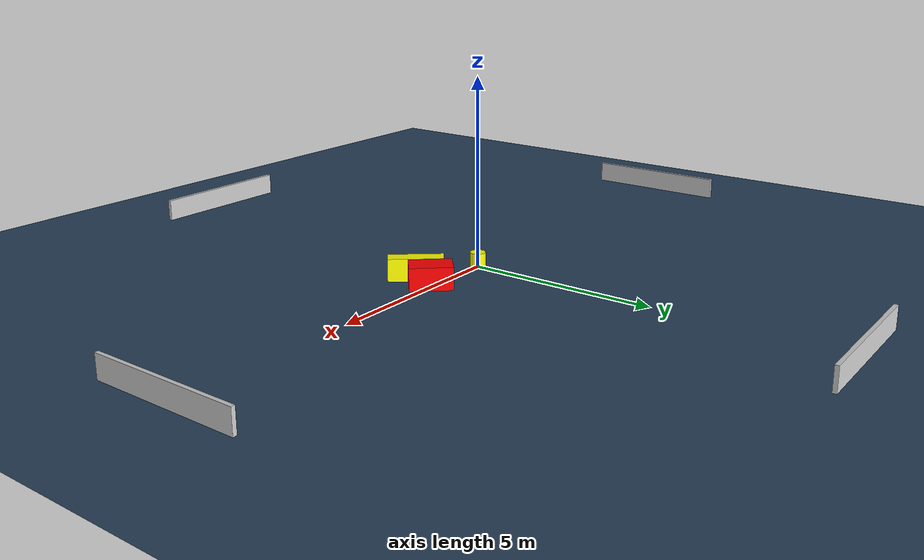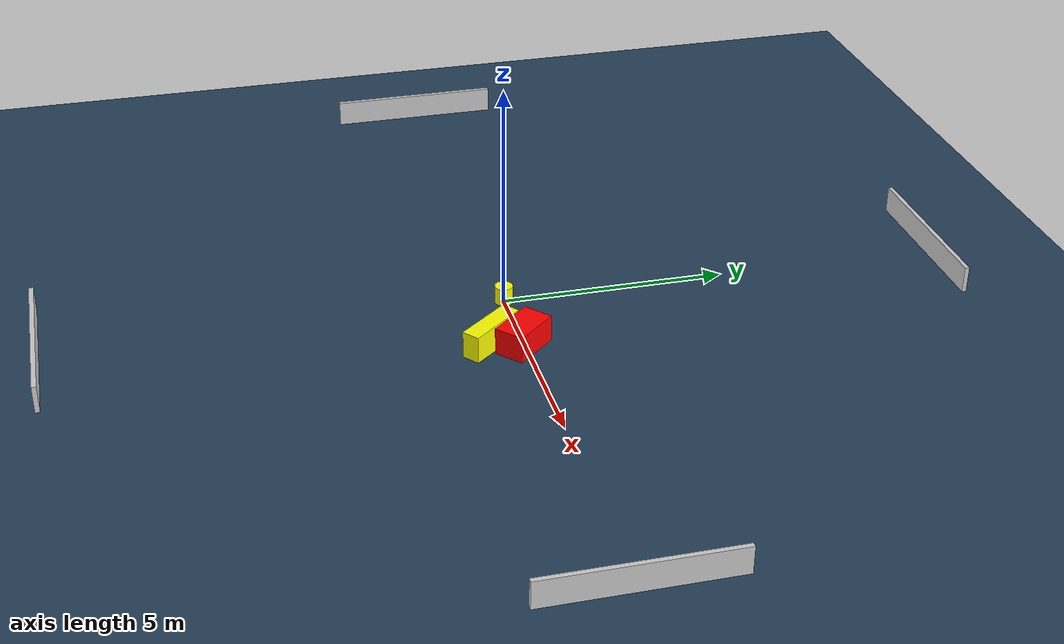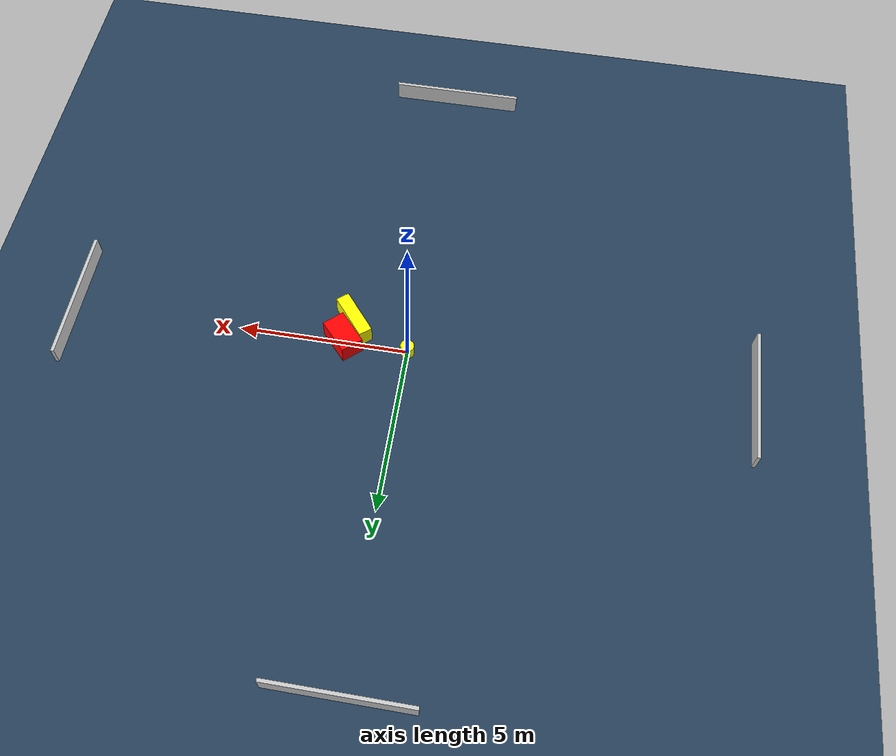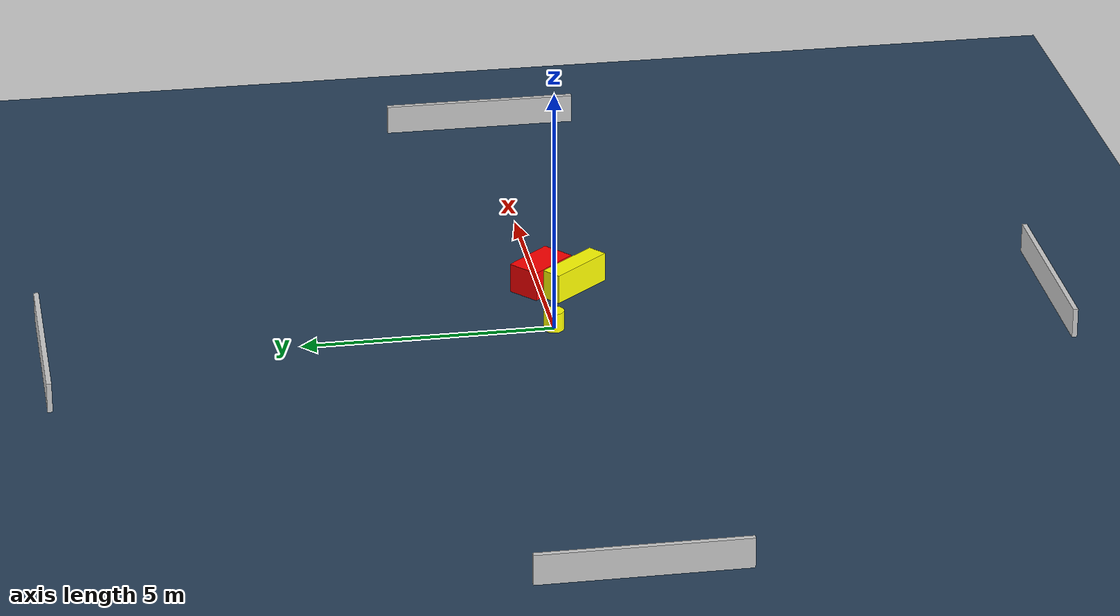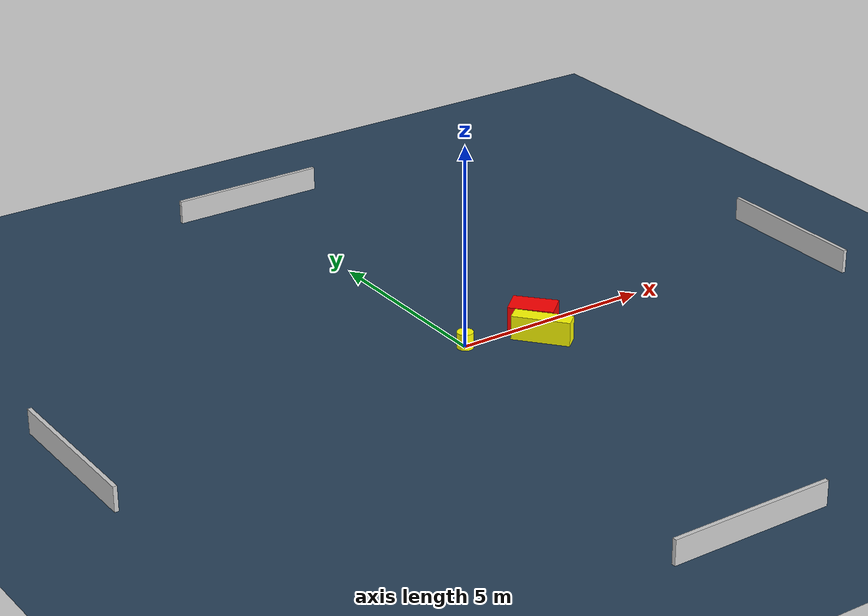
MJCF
<?xml version="1.0" ?>
<mujoco model="generated_environment">
  <option timestep="0.01" integrator="RK4" cone="elliptic"/>
  <default>
    <geom density="1"/>
  </default>
  <asset>
    <texture builtin="gradient" height="3072" name="skybox" rgb1="0.3 0.5 0.7" rgb2="0 0 0" type="skybox" width="512"/>
    <texture builtin="checker" height="300" name="groundplane" rgb1="0.2 0.3 0.4" rgb2="0.1 0.2 0.3" type="2d" width="300"/>
    <material name="groundplane" reflectance="0.2" texrepeat="5 5" texture="groundplane"/>
  </asset>
  <worldbody>
    <light dir="0 0 -1" directional="true" pos="0 0 1.5"/>
    <geom condim="3" friction="0.5 0.005 0.001" material="groundplane" name="floor" pos="0 0 0" size="0 0 0.05" type="plane"/>
    <body name="walls">
      <geom name="wall_1" condim="4" pos="-10.0 0.0 0.3" rgba="0.800000011920929 0.800000011920929 0.800000011920929 1.0" size="0.05 2.0 0.3" type="box"/>
      <geom name="wall_2" condim="4" pos="10.0 0.0 0.3" rgba="0.800000011920929 0.800000011920929 0.800000011920929 1.0" size="0.05 2.0 0.3" type="box"/>
      <geom name="wall_3" condim="4" pos="0.0 -10.0 0.3" rgba="0.800000011920929 0.800000011920929 0.800000011920929 1.0" size="2.0 0.05 0.3" type="box"/>
      <geom name="wall_4" condim="4" pos="0.0 10.0 0.3" rgba="0.800000011920929 0.800000011920929 0.800000011920929 1.0" size="2.0 0.05 0.3" type="box"/>
    </body>
    <body name="robot">
      <joint name="joint_x" type="slide" pos="0 0 0" axis="1 0 0"/>
      <joint name="joint_y" type="slide" pos="0 0 0" axis="0 1 0"/>
      <geom name="robot" type="cylinder" pos="0.0 0.0 0.2" size="0.2 0.2 0.0" mass="5.0" friction="1.0 0.005 0.0001" condim="4" rgba="1.0 1.0 0.0 1.0"/>
    </body>
    <body name="obstacle_1_movable">
      <geom name="obstacle_1_movable" condim="4" pos="1.7054843168558265 -0.6891147678127731 0.3" euler="0 0 129.5909970956448" friction="0.0 0.005 0.001" rgba="1.0 1.0 0.0 1.0" size="0.7064386489652184 0.2019456412728059 0.3" type="box" mass="0.1"/>
      <joint type="free"/>
    </body>
    <body name="obstacle_2_static">
      <geom name="obstacle_2_static" condim="4" pos="1.9140701376166718 -0.042716976780441174 0.3" euler="0 0 41.662933547182476" friction="0.0 0.005 0.001" rgba="1.0 0.0 0.0 1.0" size="0.33808914077942875 0.5507995267762618 0.3" type="box"/>
    </body>
  </worldbody>
  <actuator>
    <motor name="actuator_x" joint="joint_x" gear="1" ctrlrange="-1 1"/>
    <motor name="actuator_y" joint="joint_y" gear="1" ctrlrange="-1 1"/>
  </actuator>
</mujoco>
